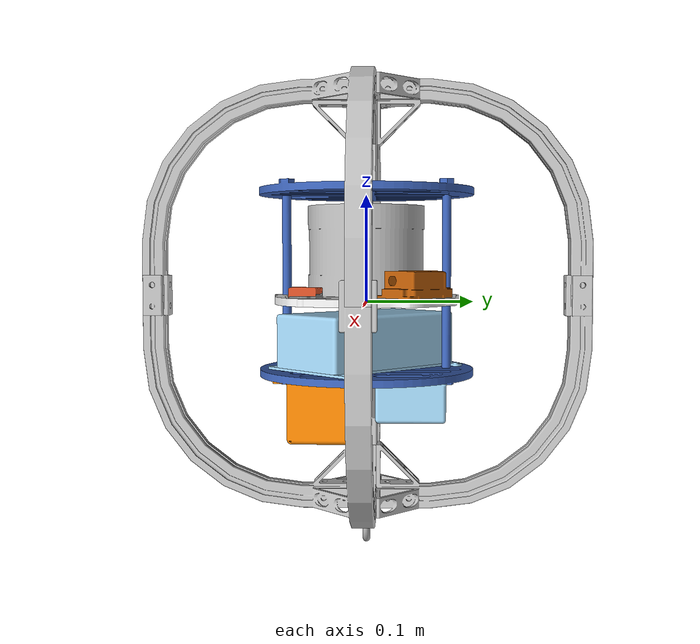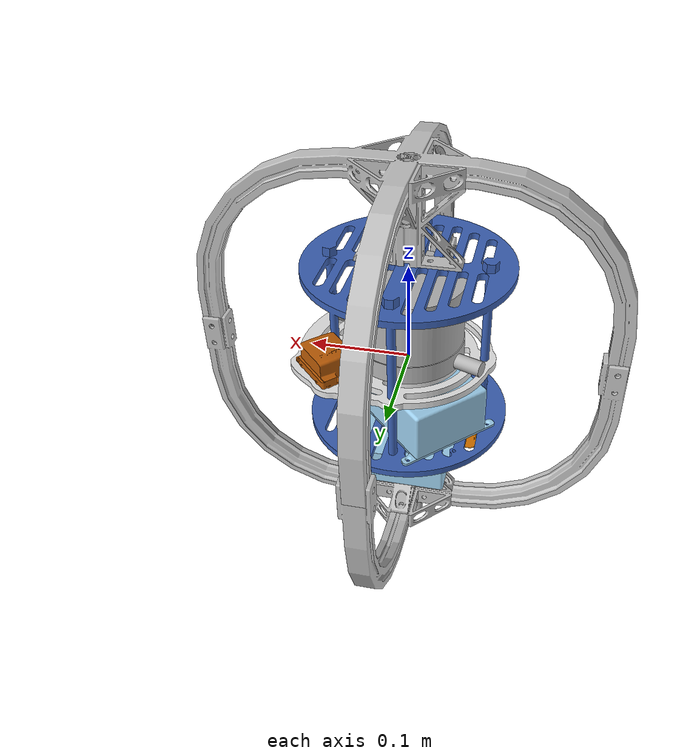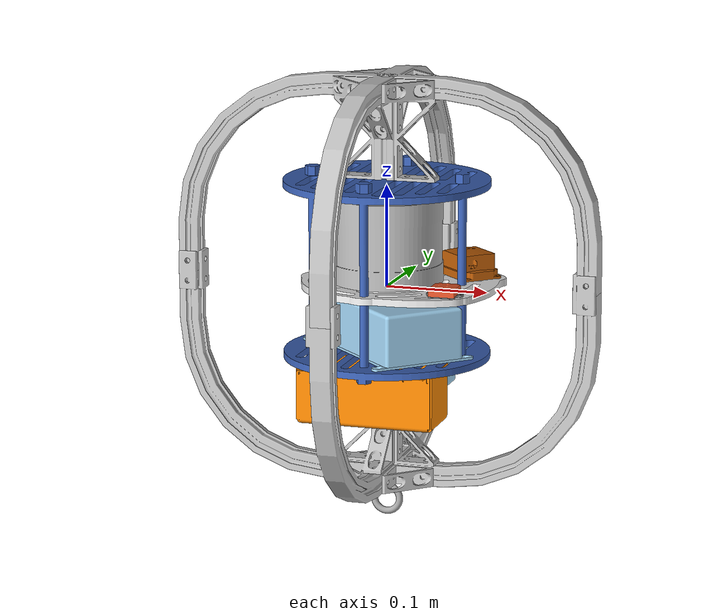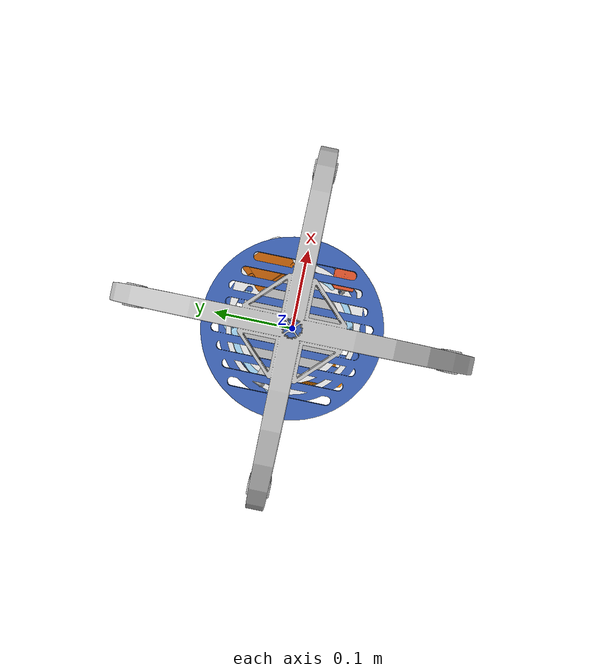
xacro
<?xml version="1.0" ?><robot name="sphere">
	<link name="base_link">
		<visual>
			<origin xyz="0.0 0.0 0.0" rpy="0.0 -0.0 0.0"/>
			<geometry>
				<mesh filename="package://sphere_description/meshes/lidar_imu_mount.stl"/>
			</geometry>
			<material name="lidar_imu_mount_material">
				<color rgba="0.90196 0.90196 0.90196 1.0"/>
			</material>
		</visual>
		<collision>
			<origin xyz="0.0 0.0 0.0" rpy="0.0 -0.0 0.0"/>
			<geometry>
				<mesh filename="package://sphere_description/meshes/lidar_imu_mount.stl"/>
			</geometry>
		</collision>
		<inertial>
			<origin xyz="0.0 0.0 0.0" rpy="0.0 0.0 0.0"/>
			<mass value="0"/>
			<inertia ixx="0" ixy="0" ixz="0" iyy="0" iyz="0" izz="0"/>
		</inertial>
	</link>

	<link name="mti30_body">
		<visual>
			<origin xyz="-0.10028 -0.03838 -0.0068" rpy="0.0 -0.0 0.0"/>
			<geometry>
				<mesh filename="package://sphere_description/meshes/mti30_body.stl"/>
			</geometry>
			<material name="mti30_body_material">
				<color rgba="0.72941 0.35686 0.02353 1.0"/>
			</material>
		</visual>
		<collision>
			<origin xyz="-0.10028 -0.03838 -0.0068" rpy="0.0 -0.0 0.0"/>
			<geometry>
				<mesh filename="package://sphere_description/meshes/mti30_body.stl"/>
			</geometry>
		</collision>
		<inertial>
			<origin xyz="0.0 0.0 0.0" rpy="0.0 0.0 0.0"/>
			<mass value="0"/>
			<inertia ixx="0" ixy="0" ixz="0" iyy="0" iyz="0" izz="0"/>
		</inertial>
	</link>

	<link name="mti30">
		<inertial>
			<origin xyz="0.0 0.0 0.0" rpy="0.0 0.0 0.0"/>
			<mass value="0"/>
			<inertia ixx="0" ixy="0" ixz="0" iyy="0" iyz="0" izz="0"/>
		</inertial>
	</link>
	<joint name="mti30_frame" type="fixed">
		<origin xyz="-0.03005 0.00538 0.01431" rpy="-0.0 -0.0 2.3562"/>
		<parent link="mti30_body"/>
		<child link="mti30"/>
		<axis xyz="0.0 0.0 0.0"/>
	</joint>

	<joint name="mti30_base_joint" type="fixed">
		<origin xyz="0.10028 0.03838 0.0068" rpy="0.0 -0.0 0.0"/>
		<parent link="base_link"/>
		<child link="mti30_body"/>
		<axis xyz="0.0 0.0 1.0"/>
		<limit effort="1" velocity="20"/>
		<joint_properties friction="0.0"/>
	</joint>

	<link name="vn100_base">
		<visual>
			<origin xyz="-0.0571 0.04925 -0.0068" rpy="0.0 -0.0 0.0"/>
			<geometry>
				<mesh filename="package://sphere_description/meshes/vn100_base.stl"/>
			</geometry>
			<material name="vn100_base_material">
				<color rgba="0.49804 0.49804 0.49804 1.0"/>
			</material>
		</visual>
		<collision>
			<origin xyz="-0.0571 0.04925 -0.0068" rpy="0.0 -0.0 0.0"/>
			<geometry>
				<mesh filename="package://sphere_description/meshes/vn100_base.stl"/>
			</geometry>
		</collision>
		<inertial>
			<origin xyz="0.0 0.0 0.0" rpy="0.0 0.0 0.0"/>
			<mass value="0"/>
			<inertia ixx="0" ixy="0" ixz="0" iyy="0" iyz="0" izz="0"/>
		</inertial>
	</link>

	<link name="vn100_lid">
		<visual>
			<origin xyz="-0.06556 0.03929 -0.00962" rpy="0.0 -0.0 0.0"/>
			<geometry>
				<mesh filename="package://sphere_description/meshes/vn100_lid.stl"/>
			</geometry>
			<material name="vn100_lid_material">
				<color rgba="0.86667 0.32157 0.15686 1.0"/>
			</material>
		</visual>
		<collision>
			<origin xyz="-0.06556 0.03929 -0.00962" rpy="0.0 -0.0 0.0"/>
			<geometry>
				<mesh filename="package://sphere_description/meshes/vn100_lid.stl"/>
			</geometry>
		</collision>
		<inertial>
			<origin xyz="0.0 0.0 0.0" rpy="0.0 0.0 0.0"/>
			<mass value="0"/>
			<inertia ixx="0" ixy="0" ixz="0" iyy="0" iyz="0" izz="0"/>
		</inertial>
	</link>

	<link name="vn100">
		<inertial>
			<origin xyz="0.0 0.0 0.0" rpy="0.0 0.0 0.0"/>
			<mass value="0"/>
			<inertia ixx="0" ixy="0" ixz="0" iyy="0" iyz="0" izz="0"/>
		</inertial>
	</link>
	<joint name="vn100_frame" type="fixed">
		<origin xyz="0.00697 -0.01165 0.0012" rpy="3.14159 -0.0 0.0"/>
		<parent link="vn100_lid"/>
		<child link="vn100"/>
		<axis xyz="0.0 0.0 0.0"/>
	</joint>

	<joint name="vectornav_lid_bottom_joint" type="fixed">
		<origin xyz="0.00846 0.00996 0.00381" rpy="0.0 -0.0 0.0"/>
		<parent link="vn100_base"/>
		<child link="vn100_lid"/>
		<axis xyz="0.0 0.0 1.0"/>
		<limit effort="1" velocity="20"/>
		<joint_properties friction="0.0"/>
	</joint>

	<joint name="vectornav_base_joint" type="fixed">
		<origin xyz="0.0571 -0.04925 0.0068" rpy="0.0 -0.0 0.0"/>
		<parent link="base_link"/>
		<child link="vn100_base"/>
		<axis xyz="0.0 0.0 1.0"/>
		<limit effort="1" velocity="20"/>
		<joint_properties friction="0.0"/>
	</joint>

	<link name="rslidar16_body">
		<visual>
			<origin xyz="0.18812 0.0684 -0.00066" rpy="0.0 -0.0 -1.22173"/>
			<geometry>
				<mesh filename="package://sphere_description/meshes/rslidar16_body.stl"/>
			</geometry>
			<material name="rslidar16_body_material">
				<color rgba="0.70196 0.70196 0.70196 1.0"/>
			</material>
		</visual>
		<collision>
			<origin xyz="0.18812 0.0684 -0.00066" rpy="0.0 -0.0 -1.22173"/>
			<geometry>
				<mesh filename="package://sphere_description/meshes/rslidar16_body.stl"/>
			</geometry>
		</collision>
		<inertial>
			<origin xyz="0.0 0.0 0.0" rpy="0.0 0.0 0.0"/>
			<mass value="0"/>
			<inertia ixx="0" ixy="0" ixz="0" iyy="0" iyz="0" izz="0"/>
		</inertial>
	</link>

	<link name="rslidar16">
		<inertial>
			<origin xyz="0.0 0.0 0.0" rpy="0.0 0.0 0.0"/>
			<mass value="0"/>
			<inertia ixx="0" ixy="0" ixz="0" iyy="0" iyz="0" izz="0"/>
		</inertial>
	</link>
	<joint name="rslidar16_frame" type="fixed">
		<origin xyz="0.0 0.0 0.0398" rpy="0.0 0.0 0.0"/>
		<parent link="rslidar16_body"/>
		<child link="rslidar16"/>
		<axis xyz="0.0 0.0 0.0"/>
	</joint>

	<joint name="rslidar16_base_joint" type="fixed">
		<origin xyz="0.0 -0.0 0.0068" rpy="-0.0 -0.0 -1.91986"/>
		<parent link="base_link"/>
		<child link="rslidar16_body"/>
		<axis xyz="0.0 0.0 1.0"/>
		<limit effort="1" velocity="20"/>
		<joint_properties friction="0.0"/>
	</joint>

	<link name="top_bottom_mount">
		<visual>
			<origin xyz="0.075 -0.0 -0.0068" rpy="0.0 -0.0 0.0"/>
			<geometry>
				<mesh filename="package://sphere_description/meshes/top_bottom_mount.stl"/>
			</geometry>
			<material name="top_bottom_mount_material">
				<color rgba="0.23137 0.38039 0.70588 1.0"/>
			</material>
		</visual>
		<collision>
			<origin xyz="0.075 -0.0 -0.0068" rpy="0.0 -0.0 0.0"/>
			<geometry>
				<mesh filename="package://sphere_description/meshes/top_bottom_mount.stl"/>
			</geometry>
		</collision>
		<inertial>
			<origin xyz="0.0 0.0 0.0" rpy="0.0 0.0 0.0"/>
			<mass value="0"/>
			<inertia ixx="0" ixy="0" ixz="0" iyy="0" iyz="0" izz="0"/>
		</inertial>
	</link>

	<link name="cover">
		<visual>
			<origin xyz="-0.01688 -0.08366 -0.06189" rpy="-3.14159 -0.0 0.0"/>
			<geometry>
				<mesh filename="package://sphere_description/meshes/cover.stl"/>
			</geometry>
			<material name="cover_material">
				<color rgba="0.61569 0.81176 0.92941 1.0"/>
			</material>
		</visual>
		<collision>
			<origin xyz="-0.01688 -0.08366 -0.06189" rpy="-3.14159 -0.0 0.0"/>
			<geometry>
				<mesh filename="package://sphere_description/meshes/cover.stl"/>
			</geometry>
		</collision>
		<inertial>
			<origin xyz="0.0 0.0 0.0" rpy="0.0 0.0 0.0"/>
			<mass value="0"/>
			<inertia ixx="0" ixy="0" ixz="0" iyy="0" iyz="0" izz="0"/>
		</inertial>
	</link>

	<link name="box">
		<visual>
			<origin xyz="0.07606 0.0247 -0.0595" rpy="-3.14159 -0.0 0.0"/>
			<geometry>
				<mesh filename="package://sphere_description/meshes/box.stl"/>
			</geometry>
			<material name="box_material">
				<color rgba="0.61569 0.81176 0.92941 1.0"/>
			</material>
		</visual>
		<collision>
			<origin xyz="0.07606 0.0247 -0.0595" rpy="-3.14159 -0.0 0.0"/>
			<geometry>
				<mesh filename="package://sphere_description/meshes/box.stl"/>
			</geometry>
		</collision>
		<inertial>
			<origin xyz="0.0 0.0 0.0" rpy="0.0 0.0 0.0"/>
			<mass value="0"/>
			<inertia ixx="0" ixy="0" ixz="0" iyy="0" iyz="0" izz="0"/>
		</inertial>
	</link>

	<joint name="box_rpi_cover" type="fixed">
		<origin xyz="-0.09295 -0.10836 -0.00239" rpy="0.0 -0.0 -0.0"/>
		<parent link="cover"/>
		<child link="box"/>
		<axis xyz="0.0 0.0 1.0"/>
		<limit effort="1" velocity="20"/>
		<joint_properties friction="0.0"/>
	</joint>

	<joint name="box_rpi" type="fixed">
		<origin xyz="0.05801 0.08377 -0.06869" rpy="-3.14159 0.0 -3.14159"/>
		<parent link="top_bottom_mount"/>
		<child link="cover"/>
		<axis xyz="0.0 0.0 1.0"/>
		<limit effort="1" velocity="20"/>
		<joint_properties friction="0.0"/>
	</joint>

	<link name="extrusions_bottom">
		<visual>
			<origin xyz="-0.0 0.18 0.07467" rpy="0.0 -0.0 -0.0"/>
			<geometry>
				<mesh filename="package://sphere_description/meshes/extrusions_bottom.stl"/>
			</geometry>
			<material name="extrusions_bottom_material">
				<color rgba="0.75294 0.75294 0.75294 1.0"/>
			</material>
		</visual>
		<collision>
			<origin xyz="-0.0 0.18 0.07467" rpy="0.0 -0.0 -0.0"/>
			<geometry>
				<mesh filename="package://sphere_description/meshes/extrusions_bottom.stl"/>
			</geometry>
		</collision>
		<inertial>
			<origin xyz="0.0 0.0 0.0" rpy="0.0 0.0 0.0"/>
			<mass value="0"/>
			<inertia ixx="0" ixy="0" ixz="0" iyy="0" iyz="0" izz="0"/>
		</inertial>
	</link>

	<link name="extrusions_top">
		<visual>
			<origin xyz="0.2 -0.2 0.0" rpy="3.14159 -0.0 0.0"/>
			<geometry>
				<mesh filename="package://sphere_description/meshes/extrusions_top.stl"/>
			</geometry>
			<material name="extrusions_top_material">
				<color rgba="0.75294 0.75294 0.75294 1.0"/>
			</material>
		</visual>
		<collision>
			<origin xyz="0.2 -0.2 0.0" rpy="3.14159 -0.0 0.0"/>
			<geometry>
				<mesh filename="package://sphere_description/meshes/extrusions_top.stl"/>
			</geometry>
		</collision>
		<inertial>
			<origin xyz="0.0 0.0 0.0" rpy="0.0 0.0 0.0"/>
			<mass value="0"/>
			<inertia ixx="0" ixy="0" ixz="0" iyy="0" iyz="0" izz="0"/>
		</inertial>
	</link>

	<joint name="extrusions_top" type="fixed">
		<origin xyz="-0.2 -0.02 0.07467" rpy="-3.14159 -0.0 -0.0"/>
		<parent link="extrusions_bottom"/>
		<child link="extrusions_top"/>
		<axis xyz="0.0 0.0 1.0"/>
		<limit effort="1" velocity="20"/>
		<joint_properties friction="0.0"/>
	</joint>

	<link name="eyebolt">
		<visual>
			<origin xyz="0.0 0.0 0.0" rpy="3.14159 -0.0 0.0"/>
			<geometry>
				<mesh filename="package://sphere_description/meshes/eyebolt.stl"/>
			</geometry>
			<material name="eyebolt_material">
				<color rgba="0.64706 0.64706 0.64706 1.0"/>
			</material>
		</visual>
		<collision>
			<origin xyz="0.0 0.0 0.0" rpy="3.14159 -0.0 0.0"/>
			<geometry>
				<mesh filename="package://sphere_description/meshes/eyebolt.stl"/>
			</geometry>
		</collision>
		<inertial>
			<origin xyz="0.0 0.0 0.0" rpy="0.0 0.0 0.0"/>
			<mass value="0"/>
			<inertia ixx="0" ixy="0" ixz="0" iyy="0" iyz="0" izz="0"/>
		</inertial>
	</link>

	<joint name="eyebolt" type="fixed">
		<origin xyz="0.0 -0.02 -0.12533" rpy="0.0 0.0 -1.5708"/>
		<parent link="extrusions_bottom"/>
		<child link="eyebolt"/>
		<axis xyz="0.0 0.0 1.0"/>
		<limit effort="1" velocity="20"/>
		<joint_properties friction="0.0"/>
	</joint>

	<link name="sheetmetal_2batteries_cover">
		<visual>
			<origin xyz="-0.00899 -0.0 0.009" rpy="-1.5708 -0.0 0.0"/>
			<geometry>
				<mesh filename="package://sphere_description/meshes/sheetmetal_2batteries_cover.stl"/>
			</geometry>
			<material name="sheetmetal_2batteries_cover_material">
				<color rgba="0.97255 0.52941 0.00392 1.0"/>
			</material>
		</visual>
		<collision>
			<origin xyz="-0.00899 -0.0 0.009" rpy="-1.5708 -0.0 0.0"/>
			<geometry>
				<mesh filename="package://sphere_description/meshes/sheetmetal_2batteries_cover.stl"/>
			</geometry>
		</collision>
		<inertial>
			<origin xyz="0.0 0.0 0.0" rpy="0.0 0.0 0.0"/>
			<mass value="0"/>
			<inertia ixx="0" ixy="0" ixz="0" iyy="0" iyz="0" izz="0"/>
		</inertial>
	</link>

	<joint name="battery_box" type="fixed">
		<origin xyz="-0.01 -0.02582 -0.0" rpy="-1.5708 0.0 -1.5708"/>
		<parent link="extrusions_bottom"/>
		<child link="sheetmetal_2batteries_cover"/>
		<axis xyz="0.0 0.0 1.0"/>
		<limit effort="1" velocity="20"/>
		<joint_properties friction="0.0"/>
	</joint>

	<joint name="extrusions_bottom" type="fixed">
		<origin xyz="0.095 -0.0 -0.07533" rpy="0.0 -0.0 -1.5708"/>
		<parent link="top_bottom_mount"/>
		<child link="extrusions_bottom"/>
		<axis xyz="0.0 0.0 1.0"/>
		<limit effort="1" velocity="20"/>
		<joint_properties friction="0.0"/>
	</joint>

	<link name="lidar_box">
		<visual>
			<origin xyz="0.057 -0.02011 0.0" rpy="3.14159 -0.0 -0.0"/>
			<geometry>
				<mesh filename="package://sphere_description/meshes/lidar_box.stl"/>
			</geometry>
			<material name="lidar_box_material">
				<color rgba="0.61569 0.81176 0.92941 1.0"/>
			</material>
		</visual>
		<collision>
			<origin xyz="0.057 -0.02011 0.0" rpy="3.14159 -0.0 -0.0"/>
			<geometry>
				<mesh filename="package://sphere_description/meshes/lidar_box.stl"/>
			</geometry>
		</collision>
		<inertial>
			<origin xyz="0.0 0.0 0.0" rpy="0.0 0.0 0.0"/>
			<mass value="0"/>
			<inertia ixx="0" ixy="0" ixz="0" iyy="0" iyz="0" izz="0"/>
		</inertial>
	</link>

	<joint name="lidar_box" type="fixed">
		<origin xyz="0.132 -0.06111 -0.07533" rpy="0.0 0.0 -3.14159"/>
		<parent link="top_bottom_mount"/>
		<child link="lidar_box"/>
		<axis xyz="0.0 0.0 1.0"/>
		<limit effort="1" velocity="20"/>
		<joint_properties friction="0.0"/>
	</joint>

	<joint name="central_plates" type="fixed">
		<origin xyz="0.075 0.0 0.0068" rpy="0.0 -0.0 3.14159"/>
		<parent link="base_link"/>
		<child link="top_bottom_mount"/>
		<axis xyz="0.0 0.0 1.0"/>
		<limit effort="1" velocity="20"/>
		<joint_properties friction="0.0"/>
	</joint>

    <link name="dps310" />
    <joint name="dps310_frame" type="fixed">
        <origin xyz="0.034955 -0.040486 -0.09265" rpy="0 0 0" />
        <parent link="rslidar16" />
        <child link="dps310" />
    </joint>

</robot>
